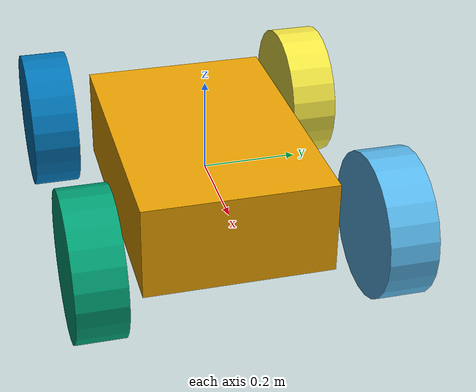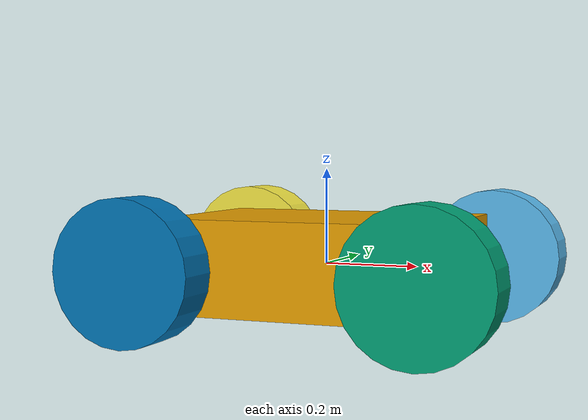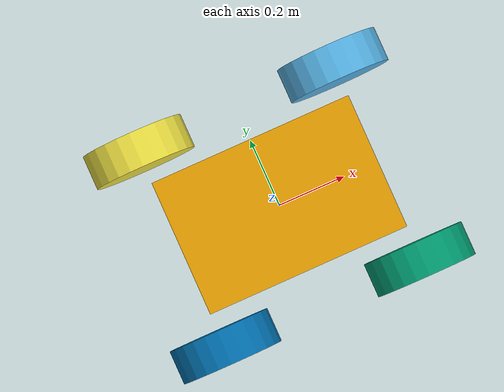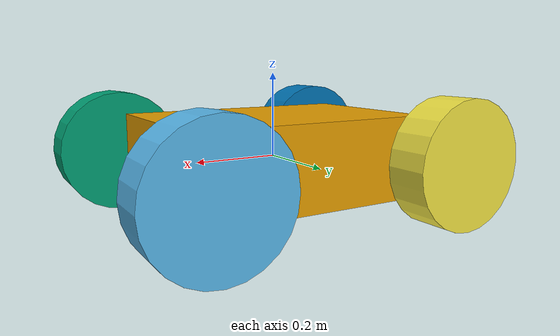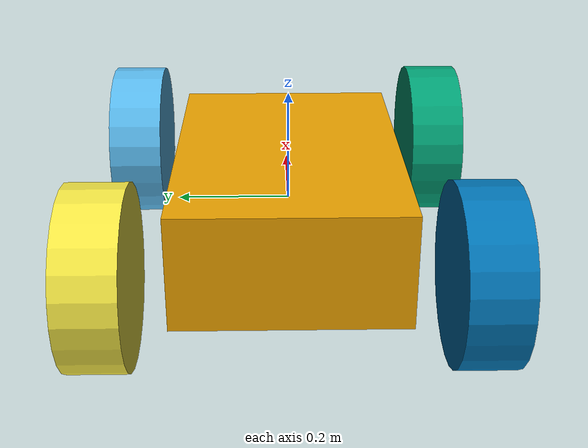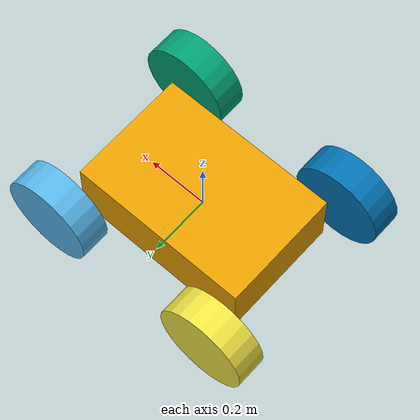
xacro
<?xml version="1.0"?>
<!-- rover -->
<robot name="rover" xmlns:xacro="http://www.ros.org/wiki/xacro">

  <!-- constants for robot dimensions -->
  <xacro:property name="PI" value="3.1415926535897931"/>

  <!-- define colors -->
  <material name="black">
    <color rgba="0.0 0.0 0.0 1.0"/>
  </material>

  <material name="orange">
    <color rgba="${255/255} ${108/255} ${10/255} 1.0"/>
  </material>

  <!-- base dimensions -->
  <xacro:property name="base_x_size" value="0.6" />
  <xacro:property name="base_y_size" value="0.4" />
  <xacro:property name="base_z_size" value="0.2" />

  <!-- wheel properties -->
  <xacro:property name="wheel_length" value="0.1" />
  <xacro:property name="wheel_radius" value="0.15" />

  <!-- base link -->
  <link name="base_link">
    <visual>
      <geometry>
        <box size="${base_x_size} ${base_y_size} ${base_z_size}"/>
      </geometry>
    </visual>
    <collision>
      <geometry>
        <box size="${base_x_size} ${base_y_size} ${base_z_size}"/>
      </geometry>
    </collision>
    <inertial>
      <origin xyz="0 0 0" rpy="0 0 0"/>
      <mass value="1.0"/>
      <inertia
        ixx="0.133" ixy="0.0" ixz="0.0"
        iyy="0.133" iyz="0.0"
        izz="0.133"/>
    </inertial>
  </link>

  <!-- wheels -->
  <link name="left_front_wheel_link">
    <visual>
      <origin xyz="0 0 0" rpy="${PI/2} 0 0" />
      <geometry>
        <cylinder length="${wheel_length}" radius="${wheel_radius}" />
      </geometry>
    </visual>
    <collision>
      <origin xyz="0 0 0" rpy="${PI/2} 0 0" />
      <geometry>
        <cylinder length="${wheel_length}" radius="${wheel_radius}" />
      </geometry>
    </collision>
    <inertial>
      <origin xyz="0 0 0" rpy="0 0 0"/>
      <mass value="0.1"/>
      <inertia
        ixx="0.0133" ixy="0.0" ixz="0.0"
        iyy="0.0133" iyz="0.0"
        izz="0.0133"/>
    </inertial>
  </link>

  <joint name="left_front_wheel_joint" type="continuous">
    <parent link="base_link"/>
    <child link="left_front_wheel_link"/>
    <origin xyz="${(base_x_size/2)} ${(base_y_size/2 + wheel_length)} 0" rpy="0 0 0"/>
    <axis xyz="0 1 0"/>
    <dynamics damping="0.01"/>
  </joint>

  <link name="right_front_wheel_link">
    <visual>
      <origin xyz="0 0 0" rpy="${PI/2} 0 0" />
      <geometry>
        <cylinder length="${wheel_length}" radius="${wheel_radius}" />
      </geometry>
    </visual>
    <collision>
      <origin xyz="0 0 0" rpy="${PI/2} 0 0" />
      <geometry>
        <cylinder length="${wheel_length}" radius="${wheel_radius}" />
      </geometry>
    </collision>
    <inertial>
      <origin xyz="0 0 0" rpy="0 0 0"/>
      <mass value="0.1"/>
      <inertia
        ixx="0.0133" ixy="0.0" ixz="0.0"
        iyy="0.0133" iyz="0.0"
        izz="0.0133"/>
    </inertial>
  </link>

  <joint name="right_front_wheel_joint" type="continuous">
    <parent link="base_link"/>
    <child link="right_front_wheel_link"/>
    <origin xyz="${(base_x_size/2)} ${-1*(base_y_size/2 + wheel_length)} 0" rpy="0 0 0"/>
    <axis xyz="0 1 0"/>
    <dynamics damping="0.01"/>
  </joint>

  <link name="left_rear_wheel_link">
    <visual>
      <origin xyz="0 0 0" rpy="${PI/2} 0 0" />
      <geometry>
        <cylinder length="${wheel_length}" radius="${wheel_radius}" />
      </geometry>
    </visual>
    <collision>
      <origin xyz="0 0 0" rpy="${PI/2} 0 0" />
      <geometry>
        <cylinder length="${wheel_length}" radius="${wheel_radius}" />
      </geometry>
    </collision>
    <inertial>
      <origin xyz="0 0 0" rpy="0 0 0"/>
      <mass value="0.1"/>
      <inertia
        ixx="0.0133" ixy="0.0" ixz="0.0"
        iyy="0.0133" iyz="0.0"
        izz="0.0133"/>
    </inertial>
  </link>

  <joint name="left_rear_wheel_joint" type="continuous">
    <parent link="base_link"/>
    <child link="left_rear_wheel_link"/>
    <origin xyz="${-1*(base_x_size/2)} ${(base_y_size/2 + wheel_length)} 0" rpy="0 0 0"/>
    <axis xyz="0 1 0"/>
    <dynamics damping="0.01"/>
  </joint>

  <link name="right_rear_wheel_link">
    <visual>
      <origin xyz="0 0 0" rpy="${PI/2} 0 0" />
      <geometry>
        <cylinder length="${wheel_length}" radius="${wheel_radius}" />
      </geometry>
    </visual>
    <collision>
      <origin xyz="0 0 0" rpy="${PI/2} 0 0" />
      <geometry>
        <cylinder length="${wheel_length}" radius="${wheel_radius}" />
      </geometry>
    </collision>
    <inertial>
      <origin xyz="0 0 0" rpy="0 0 0"/>
      <mass value="0.1"/>
      <inertia
        ixx="0.0133" ixy="0.0" ixz="0.0"
        iyy="0.0133" iyz="0.0"
        izz="0.0133"/>
    </inertial>
  </link>

  <joint name="right_rear_wheel_joint" type="continuous">
    <parent link="base_link"/>
    <child link="right_rear_wheel_link"/>
    <origin xyz="${-1*(base_x_size/2)} ${-1*(base_y_size/2 + wheel_length)} 0" rpy="0 0 0"/>
    <axis xyz="0 1 0"/>
    <dynamics damping="0.01"/>
  </joint>

  <!-- plugins -->
  <gazebo>
    <plugin filename="libignition-gazebo-joint-state-publisher-system.so"
            name="ignition::gazebo::systems::JointStatePublisher"/>
  </gazebo>

</robot>
